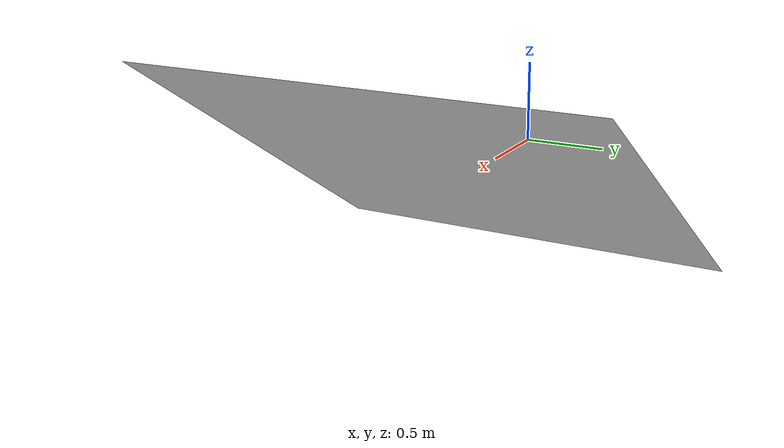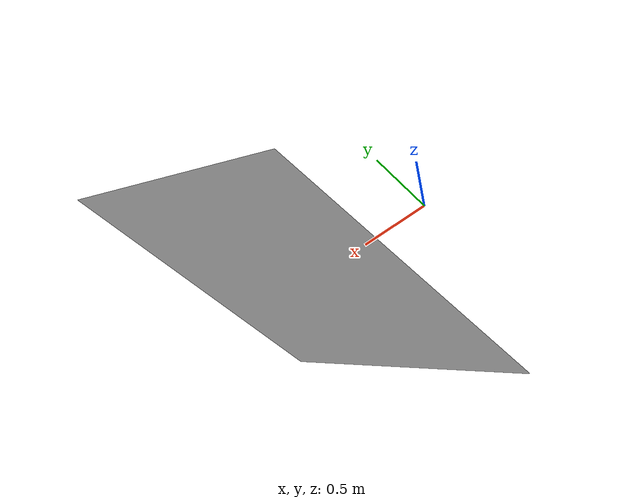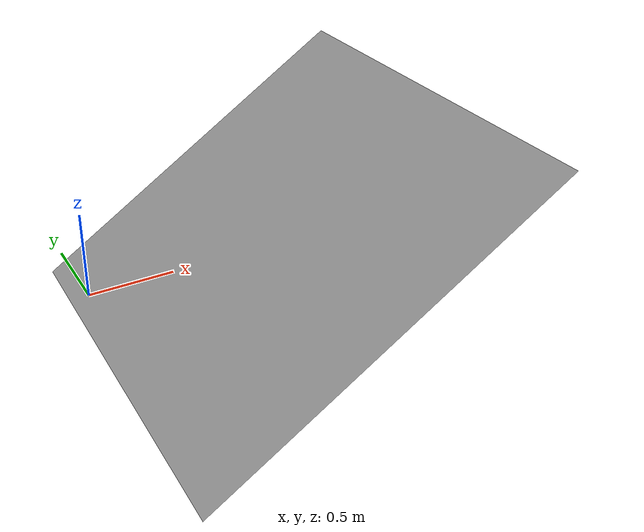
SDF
<?xml version="1.0" ?>
<sdf version="1.4">
  <model name="TestGazeboPlane">
    <pose>1.165203 0.033734 0.077975  0.583358 0 -1.578856</pose>
     <static>true</static>
    <link name="link">
      <collision name="collision">
        <geometry>
          <mesh>
            <uri>model://TestGazeboPlaneMax2016/TestGazeboPlaneMax2016.DAE</uri>
          </mesh>
        </geometry>
      </collision>
      <visual name="visual">
        <geometry>
          <mesh>
            <uri>model://TestGazeboPlaneMax2016/TestGazeboPlaneMax2016.DAE</uri>
          </mesh>
        </geometry>
      </visual>
    </link>
  </model>
</sdf>
